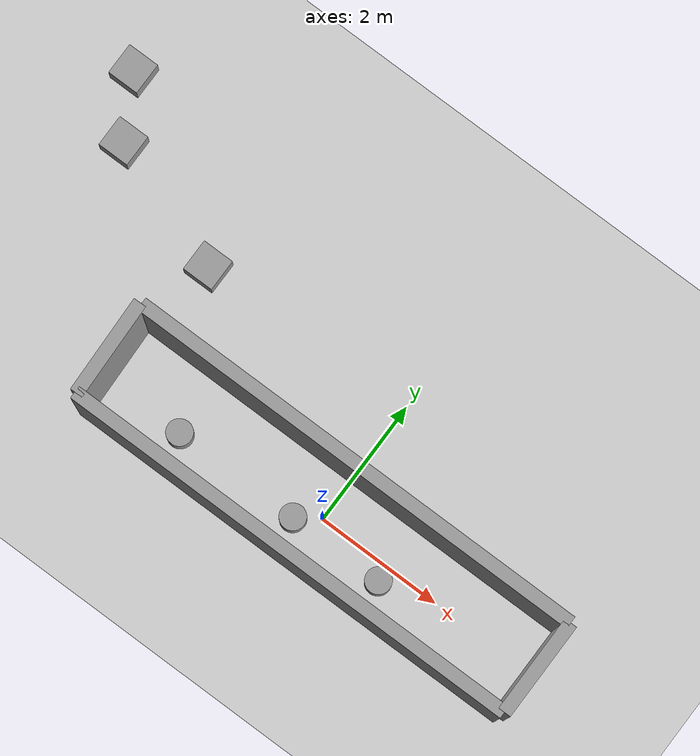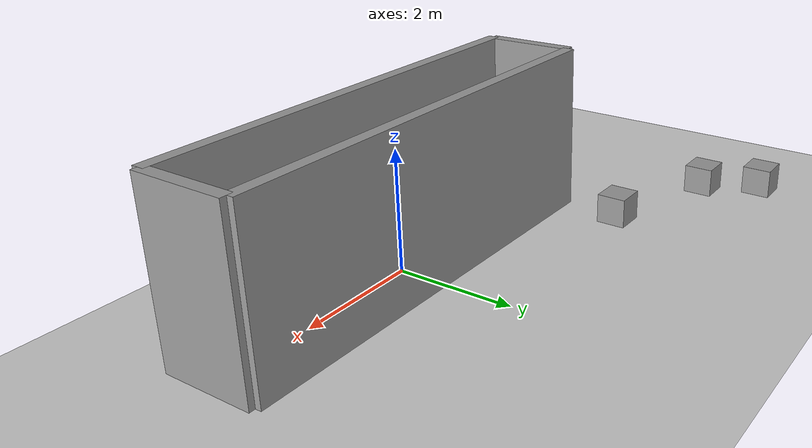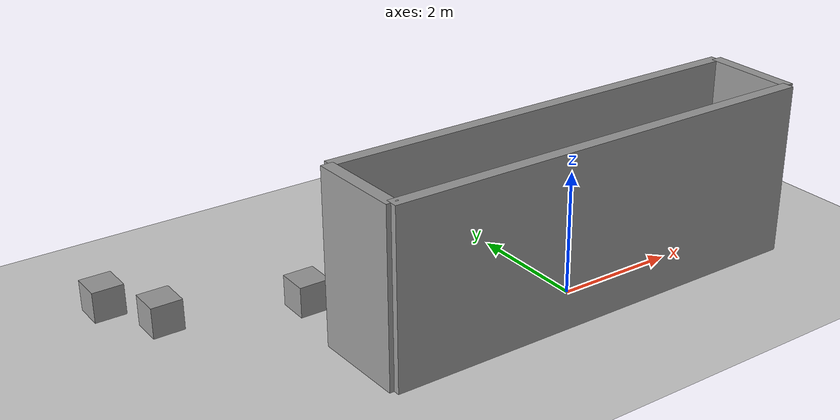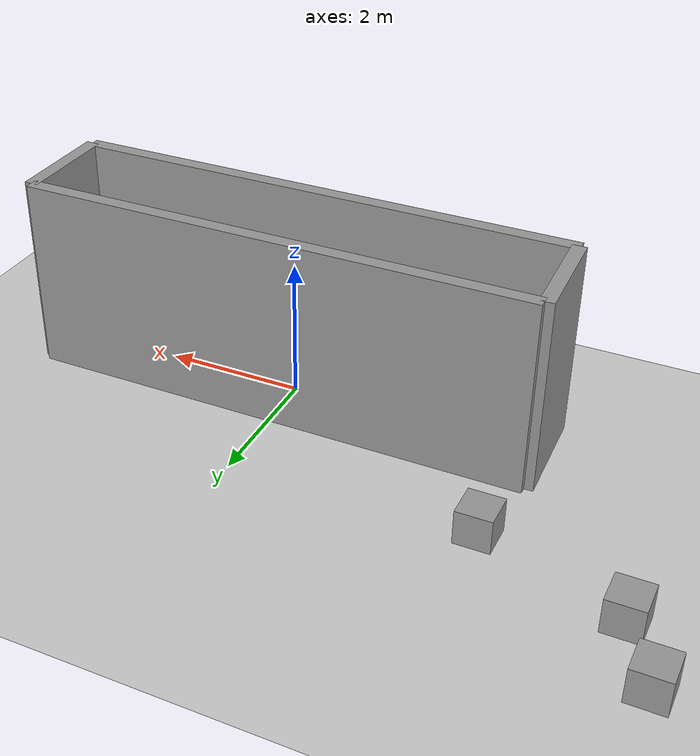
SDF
<sdf version="1.6">
 <world name="default">
  <light name="sun" type="directional">
   <pose>0 0 10 0 -0 0</pose>
   <diffuse>0.8 0.8 0.8 1</diffuse>
   <specular>0.2 0.2 0.2 1</specular>
   <attenuation>
    <range>1000</range>
    <constant>0.9</constant>
    <linear>0.01</linear>
    <quadratic>0.001</quadratic>
   </attenuation>
   <direction>-0.5 0.1 -0.9</direction>
  </light>
  <model name="ground_plane">
   <static>1</static>
   <link name="link">
    <collision name="collision">
     <geometry><plane><normal>0 0 1</normal><size>100 100</size></plane></geometry>
     <surface><friction><ode><mu>100</mu><mu2>50</mu2></ode></friction></surface>
    </collision>
    <visual name="visual">
     <cast_shadows>0</cast_shadows>
     <geometry><plane><normal>0 0 1</normal><size>100 100</size></plane></geometry>
     <material>
      <script><uri>file://media/materials/scripts/gazebo.material</uri><name>Gazebo/Grey</name></script>
     </material>
    </visual>
    <velocity_decay><linear>0</linear><angular>0</angular></velocity_decay>
   </link>
  </model>
  <physics name="default_physics" default="0" type="ode">
   <max_step_size>0.001</max_step_size>
   <real_time_factor>1</real_time_factor>
   <real_time_update_rate>1000</real_time_update_rate>
  </physics>
  <scene><ambient>0.4 0.4 0.4 1</ambient><background>0.7 0.7 0.7 1</background><shadows>1</shadows></scene>
  <spherical_coordinates>
   <surface_model>EARTH_WGS84</surface_model>
   <latitude_deg>0</latitude_deg>
   <longitude_deg>0</longitude_deg>
   <elevation>0</elevation>
   <heading_deg>0</heading_deg>
  </spherical_coordinates>
  <gravity>0 0 -9.8</gravity>
  <magnetic_field>6e-06 2.3e-05 -4.2e-05</magnetic_field>
  <atmosphere type="adiabatic"/>
  <model name="grey_wall_1_0">
   <link name="link">
    <pose>0 0 1.4 0 -0 0</pose>
    <velocity_decay><linear>0</linear><angular>0</angular></velocity_decay>
    <inertial>
     <mass>1</mass>
     <inertia><ixx>1</ixx><ixy>0</ixy><ixz>0</ixz><iyy>1</iyy><iyz>0</iyz><izz>1</izz></inertia>
    </inertial>
    <visual name="visual">
     <cast_shadows>0</cast_shadows>
     <geometry><box><size>1.52 0.2 2.8</size></box></geometry>
     <material>
      <script>
       <uri>model://grey_wall/materials/scripts</uri>
       <uri>model://grey_wall/materials/textures</uri>
       <name>vrc/grey_wall</name>
      </script>
      <ambient>1 1 1 1</ambient>
      <diffuse>1 1 1 1</diffuse>
      <specular>0 0 0 1</specular>
      <emissive>0 0 0 1</emissive>
      <shader type="vertex"><normal_map>__default__</normal_map></shader>
     </material>
    </visual>
    <collision name="collision">
     <geometry><box><size>1.52 0.2 2.8</size></box></geometry>
     <surface>
      <friction>
       <ode><mu>1</mu><mu2>1</mu2><fdir1>0 0 0</fdir1><slip1>0</slip1><slip2>0</slip2></ode>
       <torsional>
        <coefficient>1</coefficient>
        <patch_radius>0</patch_radius>
        <surface_radius>0</surface_radius>
        <use_patch_radius>1</use_patch_radius>
        <ode><slip>0</slip></ode>
       </torsional>
      </friction>
      <bounce><restitution_coefficient>0</restitution_coefficient><threshold>1e+06</threshold></bounce>
      <contact>
       <collide_without_contact>0</collide_without_contact>
       <collide_without_contact_bitmask>1</collide_without_contact_bitmask>
       <collide_bitmask>1</collide_bitmask>
       <ode>
        <soft_cfm>0</soft_cfm>
        <soft_erp>0.2</soft_erp>
        <kp>1e+13</kp>
        <kd>1</kd>
        <max_vel>0.01</max_vel>
        <min_depth>0</min_depth>
       </ode>
       <bullet>
        <split_impulse>1</split_impulse>
        <split_impulse_penetration_threshold>-0.01</split_impulse_penetration_threshold>
        <soft_cfm>0</soft_cfm>
        <soft_erp>0.2</soft_erp>
        <kp>1e+13</kp>
        <kd>1</kd>
       </bullet>
      </contact>
     </surface>
    </collision>
   </link>
   <static>1</static>
   <pose>-3.66 0 0 0 0 -1.53854</pose>
  </model>
  <model name="grey_wall_3_0">
   <link name="link">
    <pose>0 0 1.4 0 -0 0</pose>
    <velocity_decay><linear>0</linear><angular>0</angular></velocity_decay>
    <inertial>
     <mass>1</mass>
     <inertia><ixx>1</ixx><ixy>0</ixy><ixz>0</ixz><iyy>1</iyy><iyz>0</iyz><izz>1</izz></inertia>
    </inertial>
    <visual name="visual">
     <cast_shadows>0</cast_shadows>
     <geometry><box><size>1.52 0.2 2.8</size></box></geometry>
     <material>
      <script>
       <uri>model://grey_wall/materials/scripts</uri>
       <uri>model://grey_wall/materials/textures</uri>
       <name>vrc/grey_wall</name>
      </script>
      <ambient>1 1 1 1</ambient>
      <diffuse>1 1 1 1</diffuse>
      <specular>0 0 0 1</specular>
      <emissive>0 0 0 1</emissive>
      <shader type="vertex"><normal_map>__default__</normal_map></shader>
     </material>
    </visual>
    <collision name="collision">
     <geometry><box><size>1.52 0.2 2.8</size></box></geometry>
     <surface>
      <friction>
       <ode><mu>1</mu><mu2>1</mu2><fdir1>0 0 0</fdir1><slip1>0</slip1><slip2>0</slip2></ode>
       <torsional>
        <coefficient>1</coefficient>
        <patch_radius>0</patch_radius>
        <surface_radius>0</surface_radius>
        <use_patch_radius>1</use_patch_radius>
        <ode><slip>0</slip></ode>
       </torsional>
      </friction>
      <bounce><restitution_coefficient>0</restitution_coefficient><threshold>1e+06</threshold></bounce>
      <contact>
       <collide_without_contact>0</collide_without_contact>
       <collide_without_contact_bitmask>1</collide_without_contact_bitmask>
       <collide_bitmask>1</collide_bitmask>
       <ode>
        <soft_cfm>0</soft_cfm>
        <soft_erp>0.2</soft_erp>
        <kp>1e+13</kp>
        <kd>1</kd>
        <max_vel>0.01</max_vel>
        <min_depth>0</min_depth>
       </ode>
       <bullet>
        <split_impulse>1</split_impulse>
        <split_impulse_penetration_threshold>-0.01</split_impulse_penetration_threshold>
        <soft_cfm>0</soft_cfm>
        <soft_erp>0.2</soft_erp>
        <kp>1e+13</kp>
        <kd>1</kd>
       </bullet>
      </contact>
     </surface>
    </collision>
   </link>
   <static>1</static>
   <pose>3.66 0 0 0 0 -1.57102</pose>
  </model>
  <model name="grey_wall_2_0">
   <link name="link">
    <pose>0 0 1.4 0 -0 0</pose>
    <velocity_decay><linear>0</linear><angular>0</angular></velocity_decay>
    <inertial>
     <mass>1</mass>
     <inertia><ixx>1</ixx><ixy>0</ixy><ixz>0</ixz><iyy>1</iyy><iyz>0</iyz><izz>1</izz></inertia>
    </inertial>
    <visual name="visual">
     <cast_shadows>0</cast_shadows>
     <geometry><box><size>7.32 0.2 2.8</size></box></geometry>
     <material>
      <script>
       <uri>model://grey_wall/materials/scripts</uri>
       <uri>model://grey_wall/materials/textures</uri>
       <name>vrc/grey_wall</name>
      </script>
      <ambient>1 1 1 1</ambient>
      <diffuse>1 1 1 1</diffuse>
      <specular>0 0 0 1</specular>
      <emissive>0 0 0 1</emissive>
      <shader type="vertex"><normal_map>__default__</normal_map></shader>
     </material>
    </visual>
    <collision name="collision">
     <geometry><box><size>7.32 0.2 2.8</size></box></geometry>
     <surface>
      <friction>
       <ode><mu>1</mu><mu2>1</mu2><fdir1>0 0 0</fdir1><slip1>0</slip1><slip2>0</slip2></ode>
       <torsional>
        <coefficient>1</coefficient>
        <patch_radius>0</patch_radius>
        <surface_radius>0</surface_radius>
        <use_patch_radius>1</use_patch_radius>
        <ode><slip>0</slip></ode>
       </torsional>
      </friction>
      <bounce><restitution_coefficient>0</restitution_coefficient><threshold>1e+06</threshold></bounce>
      <contact>
       <collide_without_contact>0</collide_without_contact>
       <collide_without_contact_bitmask>1</collide_without_contact_bitmask>
       <collide_bitmask>1</collide_bitmask>
       <ode>
        <soft_cfm>0</soft_cfm>
        <soft_erp>0.2</soft_erp>
        <kp>1e+13</kp>
        <kd>1</kd>
        <max_vel>0.01</max_vel>
        <min_depth>0</min_depth>
       </ode>
       <bullet>
        <split_impulse>1</split_impulse>
        <split_impulse_penetration_threshold>-0.01</split_impulse_penetration_threshold>
        <soft_cfm>0</soft_cfm>
        <soft_erp>0.2</soft_erp>
        <kp>1e+13</kp>
        <kd>1</kd>
       </bullet>
      </contact>
     </surface>
    </collision>
   </link>
   <static>1</static>
   <pose>0 0.76 0 0 -0 0</pose>
  </model>
  <model name="grey_wall_0_0">
   <link name="link">
    <pose>0 0 1.4 0 -0 0</pose>
    <velocity_decay><linear>0</linear><angular>0</angular></velocity_decay>
    <inertial>
     <mass>1</mass>
     <inertia><ixx>1</ixx><ixy>0</ixy><ixz>0</ixz><iyy>1</iyy><iyz>0</iyz><izz>1</izz></inertia>
    </inertial>
    <visual name="visual">
     <cast_shadows>0</cast_shadows>
     <geometry><box><size>7.32 0.2 2.8</size></box></geometry>
     <material>
      <script>
       <uri>model://grey_wall/materials/scripts</uri>
       <uri>model://grey_wall/materials/textures</uri>
       <name>vrc/grey_wall</name>
      </script>
      <ambient>1 1 1 1</ambient>
      <diffuse>1 1 1 1</diffuse>
      <specular>0 0 0 1</specular>
      <emissive>0 0 0 1</emissive>
      <shader type="vertex"><normal_map>__default__</normal_map></shader>
     </material>
    </visual>
    <collision name="collision">
     <geometry><box><size>7.32 0.2 2.8</size></box></geometry>
     <surface>
      <friction>
       <ode><mu>1</mu><mu2>1</mu2><fdir1>0 0 0</fdir1><slip1>0</slip1><slip2>0</slip2></ode>
       <torsional>
        <coefficient>1</coefficient>
        <patch_radius>0</patch_radius>
        <surface_radius>0</surface_radius>
        <use_patch_radius>1</use_patch_radius>
        <ode><slip>0</slip></ode>
       </torsional>
      </friction>
      <bounce><restitution_coefficient>0</restitution_coefficient><threshold>1e+06</threshold></bounce>
      <contact>
       <collide_without_contact>0</collide_without_contact>
       <collide_without_contact_bitmask>1</collide_without_contact_bitmask>
       <collide_bitmask>1</collide_bitmask>
       <ode>
        <soft_cfm>0</soft_cfm>
        <soft_erp>0.2</soft_erp>
        <kp>1e+13</kp>
        <kd>1</kd>
        <max_vel>0.01</max_vel>
        <min_depth>0</min_depth>
       </ode>
       <bullet>
        <split_impulse>1</split_impulse>
        <split_impulse_penetration_threshold>-0.01</split_impulse_penetration_threshold>
        <soft_cfm>0</soft_cfm>
        <soft_erp>0.2</soft_erp>
        <kp>1e+13</kp>
        <kd>1</kd>
       </bullet>
      </contact>
     </surface>
    </collision>
   </link>
   <static>1</static>
   <pose>0 -0.76 0 0 -0 0</pose>
  </model>
  <model name="fuel_cutting_station_1">
   <link name="link">
    <pose>0 0 -0.25 0 -0 0</pose>
    <inertial>
     <mass>1</mass>
     <inertia>
      <ixx>0.166667</ixx>
      <ixy>0</ixy>
      <ixz>0</ixz>
      <iyy>0.166667</iyy>
      <iyz>0</iyz>
      <izz>0.166667</izz>
     </inertia>
    </inertial>
    <visual name="visual">
     <geometry><box><size>0.5 0.5 0.5</size></box></geometry>
     <material>
      <script><name>Gazebo/Grey</name><uri>file://media/materials/scripts/gazebo.material</uri></script>
      <ambient>0.3 0.3 0.3 1</ambient>
      <diffuse>0.7 0.7 0.7 1</diffuse>
      <specular>0.01 0.01 0.01 1</specular>
      <emissive>0 0 0 1</emissive>
      <shader type="vertex"><normal_map>__default__</normal_map></shader>
     </material>
    </visual>
    <collision name="collision">
     <geometry><box><size>1 1 1</size></box></geometry>
     <surface>
      <friction>
       <ode><mu>1</mu><mu2>1</mu2><fdir1>0 0 0</fdir1><slip1>0</slip1><slip2>0</slip2></ode>
       <torsional>
        <coefficient>1</coefficient>
        <patch_radius>0</patch_radius>
        <surface_radius>0</surface_radius>
        <use_patch_radius>1</use_patch_radius>
        <ode><slip>0</slip></ode>
       </torsional>
      </friction>
      <bounce><restitution_coefficient>0</restitution_coefficient><threshold>1e+06</threshold></bounce>
      <contact>
       <collide_without_contact>0</collide_without_contact>
       <collide_without_contact_bitmask>1</collide_without_contact_bitmask>
       <collide_bitmask>1</collide_bitmask>
       <ode>
        <soft_cfm>0</soft_cfm>
        <soft_erp>0.2</soft_erp>
        <kp>1e+13</kp>
        <kd>1</kd>
        <max_vel>0.01</max_vel>
        <min_depth>0</min_depth>
       </ode>
       <bullet>
        <split_impulse>1</split_impulse>
        <split_impulse_penetration_threshold>-0.01</split_impulse_penetration_threshold>
        <soft_cfm>0</soft_cfm>
        <soft_erp>0.2</soft_erp>
        <kp>1e+13</kp>
        <kd>1</kd>
       </bullet>
      </contact>
     </surface>
    </collision>
   </link>
   <static>0</static>
   <pose>-3.44677 1.90495 0.5 0 -0 0</pose>
  </model>
  <model name="shippint_cask_0">
   <link name="link">
    <pose>0 0 -0.25 0 -0 0</pose>
    <inertial>
     <mass>1</mass>
     <inertia><ixx>0.145833</ixx><ixy>0</ixy><ixz>0</ixz><iyy>0.145833</iyy><iyz>0</iyz><izz>0.125</izz></inertia>
    </inertial>
    <visual name="visual">
     <geometry><cylinder><radius>0.2</radius><length>0.5</length></cylinder></geometry>
     <material>
      <script><name>Gazebo/Grey</name><uri>file://media/materials/scripts/gazebo.material</uri></script>
      <ambient>0.3 0.3 0.3 1</ambient>
      <diffuse>0.7 0.7 0.7 1</diffuse>
      <specular>0.01 0.01 0.01 1</specular>
      <emissive>0 0 0 1</emissive>
      <shader type="vertex"><normal_map>__default__</normal_map></shader>
     </material>
    </visual>
    <collision name="collision">
     <geometry><cylinder><radius>0.5</radius><length>1</length></cylinder></geometry>
     <surface>
      <friction>
       <ode><mu>1</mu><mu2>1</mu2><fdir1>0 0 0</fdir1><slip1>0</slip1><slip2>0</slip2></ode>
       <torsional>
        <coefficient>1</coefficient>
        <patch_radius>0</patch_radius>
        <surface_radius>0</surface_radius>
        <use_patch_radius>1</use_patch_radius>
        <ode><slip>0</slip></ode>
       </torsional>
      </friction>
      <bounce><restitution_coefficient>0</restitution_coefficient><threshold>1e+06</threshold></bounce>
      <contact>
       <collide_without_contact>0</collide_without_contact>
       <collide_without_contact_bitmask>1</collide_without_contact_bitmask>
       <collide_bitmask>1</collide_bitmask>
       <ode>
        <soft_cfm>0</soft_cfm>
        <soft_erp>0.2</soft_erp>
        <kp>1e+13</kp>
        <kd>1</kd>
        <max_vel>0.01</max_vel>
        <min_depth>0</min_depth>
       </ode>
       <bullet>
        <split_impulse>1</split_impulse>
        <split_impulse_penetration_threshold>-0.01</split_impulse_penetration_threshold>
        <soft_cfm>0</soft_cfm>
        <soft_erp>0.2</soft_erp>
        <kp>1e+13</kp>
        <kd>1</kd>
       </bullet>
      </contact>
     </surface>
    </collision>
   </link>
   <static>0</static>
   <pose>1.166 -0.24 0.5 0 -0 0</pose>
  </model>
  <model name="shippint_cask_0_clone">
   <link name="link">
    <pose>0 0 -0.25 0 -0 0</pose>
    <inertial>
     <mass>1</mass>
     <inertia><ixx>0.145833</ixx><ixy>0</ixy><ixz>0</ixz><iyy>0.145833</iyy><iyz>0</iyz><izz>0.125</izz></inertia>
    </inertial>
    <visual name="visual">
     <geometry><cylinder><radius>0.2</radius><length>0.5</length></cylinder></geometry>
     <material>
      <script><name>Gazebo/Grey</name><uri>file://media/materials/scripts/gazebo.material</uri></script>
      <ambient>0.3 0.3 0.3 1</ambient>
      <diffuse>0.7 0.7 0.7 1</diffuse>
      <specular>0.01 0.01 0.01 1</specular>
      <emissive>0 0 0 1</emissive>
      <shader type="vertex"><normal_map>__default__</normal_map></shader>
     </material>
    </visual>
    <collision name="collision">
     <geometry><cylinder><radius>0.5</radius><length>1</length></cylinder></geometry>
     <surface>
      <friction>
       <ode><mu>1</mu><mu2>1</mu2><fdir1>0 0 0</fdir1><slip1>0</slip1><slip2>0</slip2></ode>
       <torsional>
        <coefficient>1</coefficient>
        <patch_radius>0</patch_radius>
        <surface_radius>0</surface_radius>
        <use_patch_radius>1</use_patch_radius>
        <ode><slip>0</slip></ode>
       </torsional>
      </friction>
      <bounce><restitution_coefficient>0</restitution_coefficient><threshold>1e+06</threshold></bounce>
      <contact>
       <collide_without_contact>0</collide_without_contact>
       <collide_without_contact_bitmask>1</collide_without_contact_bitmask>
       <collide_bitmask>1</collide_bitmask>
       <ode>
        <soft_cfm>0</soft_cfm>
        <soft_erp>0.2</soft_erp>
        <kp>1e+13</kp>
        <kd>1</kd>
        <max_vel>0.01</max_vel>
        <min_depth>0</min_depth>
       </ode>
       <bullet>
        <split_impulse>1</split_impulse>
        <split_impulse_penetration_threshold>-0.01</split_impulse_penetration_threshold>
        <soft_cfm>0</soft_cfm>
        <soft_erp>0.2</soft_erp>
        <kp>1e+13</kp>
        <kd>1</kd>
       </bullet>
      </contact>
     </surface>
    </collision>
   </link>
   <static>0</static>
   <pose>-0.34 -0.24 0.5 0 -0 0</pose>
  </model>
  <model name="shippint_cask_0_clone_clone">
   <link name="link">
    <pose>0 0 -0.25 0 -0 0</pose>
    <inertial>
     <mass>1</mass>
     <inertia><ixx>0.145833</ixx><ixy>0</ixy><ixz>0</ixz><iyy>0.145833</iyy><iyz>0</iyz><izz>0.125</izz></inertia>
    </inertial>
    <visual name="visual">
     <geometry><cylinder><radius>0.2</radius><length>0.5</length></cylinder></geometry>
     <material>
      <script><name>Gazebo/Grey</name><uri>file://media/materials/scripts/gazebo.material</uri></script>
      <ambient>0.3 0.3 0.3 1</ambient>
      <diffuse>0.7 0.7 0.7 1</diffuse>
      <specular>0.01 0.01 0.01 1</specular>
      <emissive>0 0 0 1</emissive>
      <shader type="vertex"><normal_map>__default__</normal_map></shader>
     </material>
    </visual>
    <collision name="collision">
     <geometry><cylinder><radius>0.5</radius><length>1</length></cylinder></geometry>
     <surface>
      <friction>
       <ode><mu>1</mu><mu2>1</mu2><fdir1>0 0 0</fdir1><slip1>0</slip1><slip2>0</slip2></ode>
       <torsional>
        <coefficient>1</coefficient>
        <patch_radius>0</patch_radius>
        <surface_radius>0</surface_radius>
        <use_patch_radius>1</use_patch_radius>
        <ode><slip>0</slip></ode>
       </torsional>
      </friction>
      <bounce><restitution_coefficient>0</restitution_coefficient><threshold>1e+06</threshold></bounce>
      <contact>
       <collide_without_contact>0</collide_without_contact>
       <collide_without_contact_bitmask>1</collide_without_contact_bitmask>
       <collide_bitmask>1</collide_bitmask>
       <ode>
        <soft_cfm>0</soft_cfm>
        <soft_erp>0.2</soft_erp>
        <kp>1e+13</kp>
        <kd>1</kd>
        <max_vel>0.01</max_vel>
        <min_depth>0</min_depth>
       </ode>
       <bullet>
        <split_impulse>1</split_impulse>
        <split_impulse_penetration_threshold>-0.01</split_impulse_penetration_threshold>
        <soft_cfm>0</soft_cfm>
        <soft_erp>0.2</soft_erp>
        <kp>1e+13</kp>
        <kd>1</kd>
       </bullet>
      </contact>
     </surface>
    </collision>
   </link>
   <static>0</static>
   <pose>-2.34 -0.24 0.5 0 -0 0</pose>
  </model>
  <model name="fuel_cutting_station_1_clone">
   <link name="link">
    <pose>0 0 -0.25 0 -0 0</pose>
    <inertial>
     <mass>1</mass>
     <inertia>
      <ixx>0.166667</ixx>
      <ixy>0</ixy>
      <ixz>0</ixz>
      <iyy>0.166667</iyy>
      <iyz>0</iyz>
      <izz>0.166667</izz>
     </inertia>
    </inertial>
    <visual name="visual">
     <geometry><box><size>0.5 0.5 0.5</size></box></geometry>
     <material>
      <script><name>Gazebo/Grey</name><uri>file://media/materials/scripts/gazebo.material</uri></script>
      <ambient>0.3 0.3 0.3 1</ambient>
      <diffuse>0.7 0.7 0.7 1</diffuse>
      <specular>0.01 0.01 0.01 1</specular>
      <emissive>0 0 0 1</emissive>
      <shader type="vertex"><normal_map>__default__</normal_map></shader>
     </material>
    </visual>
    <collision name="collision">
     <geometry><box><size>1 1 1</size></box></geometry>
     <surface>
      <friction>
       <ode><mu>1</mu><mu2>1</mu2><fdir1>0 0 0</fdir1><slip1>0</slip1><slip2>0</slip2></ode>
       <torsional>
        <coefficient>1</coefficient>
        <patch_radius>0</patch_radius>
        <surface_radius>0</surface_radius>
        <use_patch_radius>1</use_patch_radius>
        <ode><slip>0</slip></ode>
       </torsional>
      </friction>
      <bounce><restitution_coefficient>0</restitution_coefficient><threshold>1e+06</threshold></bounce>
      <contact>
       <collide_without_contact>0</collide_without_contact>
       <collide_without_contact_bitmask>1</collide_without_contact_bitmask>
       <collide_bitmask>1</collide_bitmask>
       <ode>
        <soft_cfm>0</soft_cfm>
        <soft_erp>0.2</soft_erp>
        <kp>1e+13</kp>
        <kd>1</kd>
        <max_vel>0.01</max_vel>
        <min_depth>0</min_depth>
       </ode>
       <bullet>
        <split_impulse>1</split_impulse>
        <split_impulse_penetration_threshold>-0.01</split_impulse_penetration_threshold>
        <soft_cfm>0</soft_cfm>
        <soft_erp>0.2</soft_erp>
        <kp>1e+13</kp>
        <kd>1</kd>
       </bullet>
      </contact>
     </surface>
    </collision>
   </link>
   <static>0</static>
   <pose>-5.47619 2.61149 0.5 0 -0 0</pose>
  </model>
  <model name="fuel_cutting_station_1_clone_0">
   <link name="link">
    <pose>0 0 -0.25 0 -0 0</pose>
    <inertial>
     <mass>1</mass>
     <inertia>
      <ixx>0.166667</ixx>
      <ixy>0</ixy>
      <ixz>0</ixz>
      <iyy>0.166667</iyy>
      <iyz>0</iyz>
      <izz>0.166667</izz>
     </inertia>
    </inertial>
    <visual name="visual">
     <geometry><box><size>0.5 0.5 0.5</size></box></geometry>
     <material>
      <script><name>Gazebo/Grey</name><uri>file://media/materials/scripts/gazebo.material</uri></script>
      <ambient>0.3 0.3 0.3 1</ambient>
      <diffuse>0.7 0.7 0.7 1</diffuse>
      <specular>0.01 0.01 0.01 1</specular>
      <emissive>0 0 0 1</emissive>
      <shader type="vertex"><normal_map>__default__</normal_map></shader>
     </material>
    </visual>
    <collision name="collision">
     <geometry><box><size>1 1 1</size></box></geometry>
     <surface>
      <friction>
       <ode><mu>1</mu><mu2>1</mu2><fdir1>0 0 0</fdir1><slip1>0</slip1><slip2>0</slip2></ode>
       <torsional>
        <coefficient>1</coefficient>
        <patch_radius>0</patch_radius>
        <surface_radius>0</surface_radius>
        <use_patch_radius>1</use_patch_radius>
        <ode><slip>0</slip></ode>
       </torsional>
      </friction>
      <bounce><restitution_coefficient>0</restitution_coefficient><threshold>1e+06</threshold></bounce>
      <contact>
       <collide_without_contact>0</collide_without_contact>
       <collide_without_contact_bitmask>1</collide_without_contact_bitmask>
       <collide_bitmask>1</collide_bitmask>
       <ode>
        <soft_cfm>0</soft_cfm>
        <soft_erp>0.2</soft_erp>
        <kp>1e+13</kp>
        <kd>1</kd>
        <max_vel>0.01</max_vel>
        <min_depth>0</min_depth>
       </ode>
       <bullet>
        <split_impulse>1</split_impulse>
        <split_impulse_penetration_threshold>-0.01</split_impulse_penetration_threshold>
        <soft_cfm>0</soft_cfm>
        <soft_erp>0.2</soft_erp>
        <kp>1e+13</kp>
        <kd>1</kd>
       </bullet>
      </contact>
     </surface>
    </collision>
   </link>
   <static>0</static>
   <pose>-5.98568 3.52062 0.5 0 -0 0</pose>
  </model>
 </world>
</sdf>
